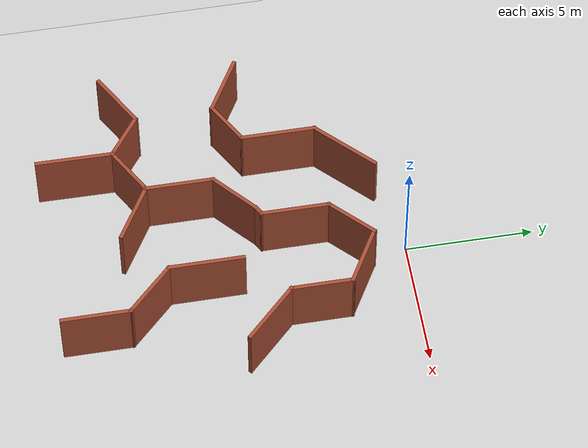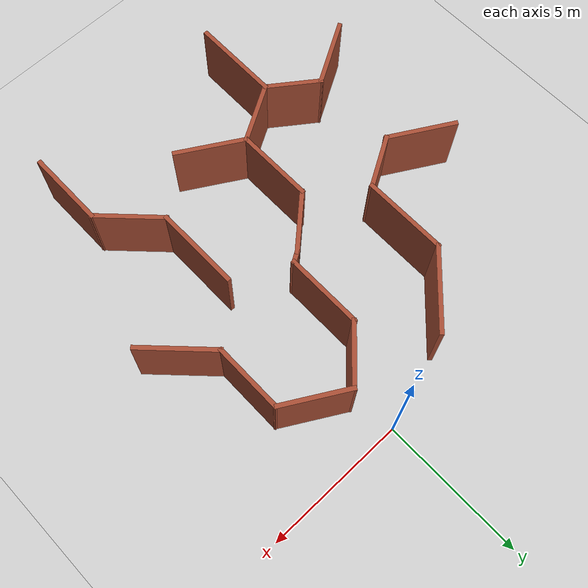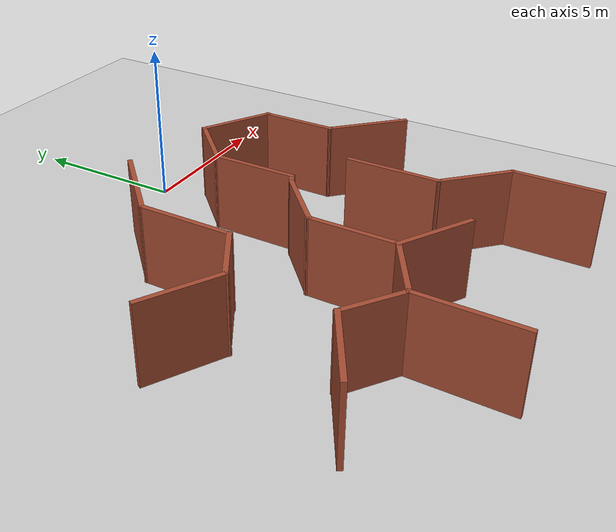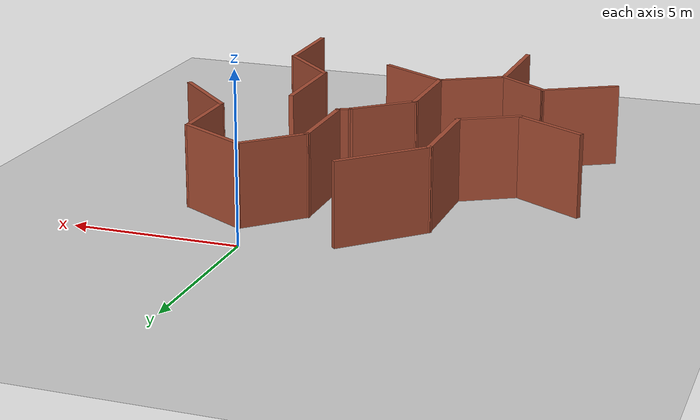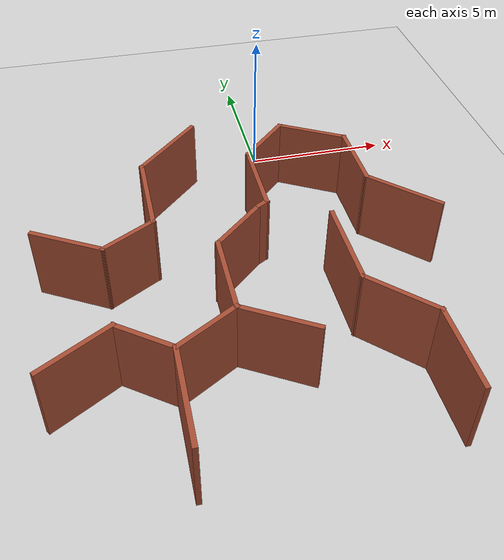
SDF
<sdf version="1.6">
 <world name="default">
  <model name="maze_rect_3">
   <pose>4e-06 -9.9e-05 0 0 -0 1.57001</pose>
   <link name="Wall_472">
    <collision name="Wall_472_Collision">
     <geometry><box><size>2.75 0.15 2.5</size></box></geometry>
     <pose>0 0 1.25 0 -0 0</pose>
    </collision>
    <visual name="Wall_472_Visual">
     <pose>0 0 1.25 0 -0 0</pose>
     <geometry><box><size>2.75 0.15 2.5</size></box></geometry>
     <material>
      <script><uri>file://media/materials/scripts/gazebo.material</uri><name>Gazebo/Bricks</name></script>
      <ambient>1 1 1 1</ambient>
     </material>
     <meta><layer>0</layer></meta>
    </visual>
    <pose>-5.83228 -3.50697 0 0 -0 0.785398</pose>
   </link>
   <link name="Wall_473">
    <collision name="Wall_473_Collision">
     <geometry><box><size>2.5 0.15 2.5</size></box></geometry>
     <pose>0 0 1.25 0 -0 0</pose>
    </collision>
    <visual name="Wall_473_Visual">
     <pose>0 0 1.25 0 -0 0</pose>
     <geometry><box><size>2.5 0.15 2.5</size></box></geometry>
     <material>
      <script><uri>file://media/materials/scripts/gazebo.material</uri><name>Gazebo/Bricks</name></script>
      <ambient>1 1 1 1</ambient>
     </material>
     <meta><layer>0</layer></meta>
    </visual>
    <pose>-3.73805 -2.58773 0 0 -0 0</pose>
   </link>
   <link name="Wall_474">
    <collision name="Wall_474_Collision">
     <geometry><box><size>2.5 0.15 2.5</size></box></geometry>
     <pose>0 0 1.25 0 -0 0</pose>
    </collision>
    <visual name="Wall_474_Visual">
     <pose>0 0 1.25 0 -0 0</pose>
     <geometry><box><size>2.5 0.15 2.5</size></box></geometry>
     <material>
      <script><uri>file://media/materials/scripts/gazebo.material</uri><name>Gazebo/Bricks</name></script>
      <ambient>1 1 1 1</ambient>
     </material>
     <meta><layer>0</layer></meta>
    </visual>
    <pose>-1.97555 -1.57015 0 0 -0 1.0472</pose>
   </link>
   <link name="Wall_475">
    <collision name="Wall_475_Collision">
     <geometry><box><size>2.25 0.15 2.5</size></box></geometry>
     <pose>0 0 1.25 0 -0 0</pose>
    </collision>
    <visual name="Wall_475_Visual">
     <pose>0 0 1.25 0 -0 0</pose>
     <geometry><box><size>2.25 0.15 2.5</size></box></geometry>
     <material>
      <script><uri>file://media/materials/scripts/gazebo.material</uri><name>Gazebo/Bricks</name></script>
      <ambient>1 1 1 1</ambient>
     </material>
     <meta><layer>0</layer></meta>
    </visual>
    <pose>-2.13051 0.189894 0 0 -0 2.35619</pose>
   </link>
   <link name="Wall_476">
    <collision name="Wall_476_Collision">
     <geometry><box><size>2.75 0.15 2.5</size></box></geometry>
     <pose>0 0 1.25 0 -0 0</pose>
    </collision>
    <visual name="Wall_476_Visual">
     <pose>0 0 1.25 0 -0 0</pose>
     <geometry><box><size>2.75 0.15 2.5</size></box></geometry>
     <material>
      <script><uri>file://media/materials/scripts/gazebo.material</uri><name>Gazebo/Bricks</name></script>
      <ambient>1 1 1 1</ambient>
     </material>
     <meta><layer>0</layer></meta>
    </visual>
    <pose>-4.17297 0.932357 0 0 -0 3.14159</pose>
   </link>
   <link name="Wall_491">
    <collision name="Wall_491_Collision">
     <geometry><box><size>3.09032 0.15 2.5</size></box></geometry>
     <pose>0 0 1.25 0 -0 0</pose>
    </collision>
    <visual name="Wall_491_Visual">
     <pose>0 0 1.25 0 -0 0</pose>
     <geometry><box><size>3.09032 0.15 2.5</size></box></geometry>
     <material>
      <script><uri>file://media/materials/scripts/gazebo.material</uri><name>Gazebo/Bricks</name></script>
      <ambient>1 1 1 1</ambient>
     </material>
     <meta><layer>0</layer></meta>
    </visual>
    <pose>-12.1829 4.63645 0 0 -0 -0.00677</pose>
   </link>
   <link name="Wall_492">
    <collision name="Wall_492_Collision">
     <geometry><box><size>2.25 0.15 2.5</size></box></geometry>
     <pose>0 0 1.25 0 -0 0</pose>
    </collision>
    <visual name="Wall_492_Visual">
     <pose>0 0 1.25 0 -0 0</pose>
     <geometry><box><size>2.25 0.15 2.5</size></box></geometry>
     <material>
      <script><uri>file://media/materials/scripts/gazebo.material</uri><name>Gazebo/Bricks</name></script>
      <ambient>1 1 1 1</ambient>
     </material>
     <meta><layer>0</layer></meta>
    </visual>
    <pose>-10.1878 3.71717 0 0 -0 -1.0472</pose>
   </link>
   <link name="Wall_493">
    <collision name="Wall_493_Collision">
     <geometry><box><size>2.75 0.15 2.5</size></box></geometry>
     <pose>0 0 1.25 0 -0 0</pose>
    </collision>
    <visual name="Wall_493_Visual">
     <pose>0 0 1.25 0 -0 0</pose>
     <geometry><box><size>2.75 0.15 2.5</size></box></geometry>
     <material>
      <script><uri>file://media/materials/scripts/gazebo.material</uri><name>Gazebo/Bricks</name></script>
      <ambient>1 1 1 1</ambient>
     </material>
     <meta><layer>0</layer></meta>
    </visual>
    <pose>-8.36282 2.80784 0 0 -0 0</pose>
   </link>
   <link name="Wall_494">
    <collision name="Wall_494_Collision">
     <geometry><box><size>2.26522 0.15 2.5</size></box></geometry>
     <pose>0 0 1.25 0 -0 0</pose>
    </collision>
    <visual name="Wall_494_Visual">
     <pose>0 0 1.25 0 -0 0</pose>
     <geometry><box><size>2.26522 0.15 2.5</size></box></geometry>
     <material>
      <script><uri>file://media/materials/scripts/gazebo.material</uri><name>Gazebo/Bricks</name></script>
      <ambient>1 1 1 1</ambient>
     </material>
     <meta><layer>0</layer></meta>
    </visual>
    <pose>-6.35539 2.02165 0 0 -0 -0.838084</pose>
   </link>
   <link name="Wall_496">
    <collision name="Wall_496_Collision">
     <geometry><box><size>0.5 0.15 2.5</size></box></geometry>
     <pose>0 0 1.25 0 -0 0</pose>
    </collision>
    <visual name="Wall_496_Visual">
     <pose>0 0 1.25 0 -0 0</pose>
     <geometry><box><size>0.5 0.15 2.5</size></box></geometry>
     <material>
      <script><uri>file://media/materials/scripts/gazebo.material</uri><name>Gazebo/Bricks</name></script>
      <ambient>1 1 1 1</ambient>
     </material>
     <meta><layer>0</layer></meta>
    </visual>
    <pose>-5.56047 1.08391 0 0 -0 -1.0472</pose>
   </link>
   <link name="Wall_498">
    <collision name="Wall_498_Collision">
     <geometry><box><size>2.52361 0.15 2.5</size></box></geometry>
     <pose>0 0 1.25 0 -0 0</pose>
    </collision>
    <visual name="Wall_498_Visual">
     <pose>0 0 1.25 0 -0 0</pose>
     <geometry><box><size>2.52361 0.15 2.5</size></box></geometry>
     <material>
      <script><uri>file://media/materials/scripts/gazebo.material</uri><name>Gazebo/Bricks</name></script>
      <ambient>1 1 1 1</ambient>
     </material>
     <meta><layer>0</layer></meta>
    </visual>
    <pose>-10.2689 1.78745 0 0 -0 1.03485</pose>
   </link>
   <link name="Wall_500">
    <collision name="Wall_500_Collision">
     <geometry><box><size>3 0.15 2.5</size></box></geometry>
     <pose>0 0 1.25 0 -0 0</pose>
    </collision>
    <visual name="Wall_500_Visual">
     <pose>0 0 1.25 0 -0 0</pose>
     <geometry><box><size>3 0.15 2.5</size></box></geometry>
     <material>
      <script><uri>file://media/materials/scripts/gazebo.material</uri><name>Gazebo/Bricks</name></script>
      <ambient>1 1 1 1</ambient>
     </material>
     <meta><layer>0</layer></meta>
    </visual>
    <pose>-7.87889 -0.91715 0 0 -0 3.14159</pose>
   </link>
   <link name="Wall_501">
    <collision name="Wall_501_Collision">
     <geometry><box><size>2.5 0.15 2.5</size></box></geometry>
     <pose>0 0 1.25 0 -0 0</pose>
    </collision>
    <visual name="Wall_501_Visual">
     <pose>0 0 1.25 0 -0 0</pose>
     <geometry><box><size>2.5 0.15 2.5</size></box></geometry>
     <material>
      <script><uri>file://media/materials/scripts/gazebo.material</uri><name>Gazebo/Bricks</name></script>
      <ambient>1 1 1 1</ambient>
     </material>
     <meta><layer>0</layer></meta>
    </visual>
    <pose>-10.1347 -1.748 0 0 -0 -2.35619</pose>
   </link>
   <link name="Wall_502">
    <collision name="Wall_502_Collision">
     <geometry><box><size>2.75 0.15 2.5</size></box></geometry>
     <pose>0 0 1.25 0 -0 0</pose>
    </collision>
    <visual name="Wall_502_Visual">
     <pose>0 0 1.25 0 -0 0</pose>
     <geometry><box><size>2.75 0.15 2.5</size></box></geometry>
     <material>
      <script><uri>file://media/materials/scripts/gazebo.material</uri><name>Gazebo/Bricks</name></script>
      <ambient>1 1 1 1</ambient>
     </material>
     <meta><layer>0</layer></meta>
    </visual>
    <pose>-12.2656 -2.57885 0 0 -0 3.14159</pose>
   </link>
   <link name="Wall_700">
    <collision name="Wall_700_Collision">
     <geometry><box><size>2.5 0.15 2.5</size></box></geometry>
     <pose>0 0 1.25 0 -0 0</pose>
    </collision>
    <visual name="Wall_700_Visual">
     <pose>0 0 1.25 0 -0 0</pose>
     <geometry><box><size>2.5 0.15 2.5</size></box></geometry>
     <material>
      <script><uri>file://media/materials/scripts/gazebo.material</uri><name>Gazebo/Bricks</name></script>
      <ambient>1 1 1 1</ambient>
     </material>
     <meta><layer>0</layer></meta>
    </visual>
    <pose>-10.1967 7.15656 0 0 -0 -1.0472</pose>
   </link>
   <link name="Wall_701">
    <collision name="Wall_701_Collision">
     <geometry><box><size>2.02232 0.15 2.5</size></box></geometry>
     <pose>0 0 1.25 0 -0 0</pose>
    </collision>
    <visual name="Wall_701_Visual">
     <pose>0 0 1.25 0 -0 0</pose>
     <geometry><box><size>2.02232 0.15 2.5</size></box></geometry>
     <material>
      <script><uri>file://media/materials/scripts/gazebo.material</uri><name>Gazebo/Bricks</name></script>
      <ambient>1 1 1 1</ambient>
     </material>
     <meta><layer>0</layer></meta>
    </visual>
    <pose>-10.161 5.38274 0 0 -0 -2.20116</pose>
   </link>
   <link name="Wall_78">
    <collision name="Wall_78_Collision">
     <geometry><box><size>2.5 0.15 2.5</size></box></geometry>
     <pose>0 0 1.25 0 -0 0</pose>
    </collision>
    <visual name="Wall_78_Visual">
     <pose>0 0 1.25 0 -0 0</pose>
     <geometry><box><size>2.5 0.15 2.5</size></box></geometry>
     <material>
      <script><uri>file://media/materials/scripts/gazebo.material</uri><name>Gazebo/Bricks</name></script>
      <ambient>1 1 1 1</ambient>
     </material>
     <meta><layer>0</layer></meta>
    </visual>
    <pose>-6.00754 7.17756 0 0 -0 -2.0944</pose>
   </link>
   <link name="Wall_79">
    <collision name="Wall_79_Collision">
     <geometry><box><size>2 0.15 2.5</size></box></geometry>
     <pose>0 0 1.25 0 -0 0</pose>
    </collision>
    <visual name="Wall_79_Visual">
     <pose>0 0 1.25 0 -0 0</pose>
     <geometry><box><size>2 0.15 2.5</size></box></geometry>
     <material>
      <script><uri>file://media/materials/scripts/gazebo.material</uri><name>Gazebo/Bricks</name></script>
      <ambient>1 1 1 1</ambient>
     </material>
     <meta><layer>0</layer></meta>
    </visual>
    <pose>-6.13254 5.35891 0 0 -0 -1.0472</pose>
   </link>
   <link name="Wall_80">
    <collision name="Wall_80_Collision">
     <geometry><box><size>3 0.15 2.5</size></box></geometry>
     <pose>0 0 1.25 0 -0 0</pose>
    </collision>
    <visual name="Wall_80_Visual">
     <pose>0 0 1.25 0 -0 0</pose>
     <geometry><box><size>3 0.15 2.5</size></box></geometry>
     <material>
      <script><uri>file://media/materials/scripts/gazebo.material</uri><name>Gazebo/Bricks</name></script>
      <ambient>1 1 1 1</ambient>
     </material>
     <meta><layer>0</layer></meta>
    </visual>
    <pose>-4.24504 4.55783 0 0 -0 0</pose>
   </link>
   <link name="Wall_81">
    <collision name="Wall_81_Collision">
     <geometry><box><size>3 0.15 2.5</size></box></geometry>
     <pose>0 0 1.25 0 -0 0</pose>
    </collision>
    <visual name="Wall_81_Visual">
     <pose>0 0 1.25 0 -0 0</pose>
     <geometry><box><size>3 0.15 2.5</size></box></geometry>
     <material>
      <script><uri>file://media/materials/scripts/gazebo.material</uri><name>Gazebo/Bricks</name></script>
      <ambient>1 1 1 1</ambient>
     </material>
     <meta><layer>0</layer></meta>
    </visual>
    <pose>-1.81241 3.55021 0 0 -0 -0.785398</pose>
   </link>
   <static>1</static>
  </model>
  <model name="ground_plane">
   <static>1</static>
   <link name="link">
    <collision name="collision">
     <geometry><plane><normal>0 0 1</normal><size>100 100</size></plane></geometry>
     <surface>
      <contact><collide_bitmask>65535</collide_bitmask></contact>
      <friction><ode><mu>100</mu><mu2>50</mu2></ode></friction>
     </surface>
    </collision>
    <visual name="visual">
     <cast_shadows>0</cast_shadows>
     <geometry><plane><normal>0 0 1</normal><size>100 100</size></plane></geometry>
     <material>
      <script><uri>file://media/materials/scripts/gazebo.material</uri><name>Gazebo/Grey</name></script>
     </material>
    </visual>
   </link>
   <pose>9.31394 52.073 0 0 -0 0</pose>
  </model>
 </world>
</sdf>
